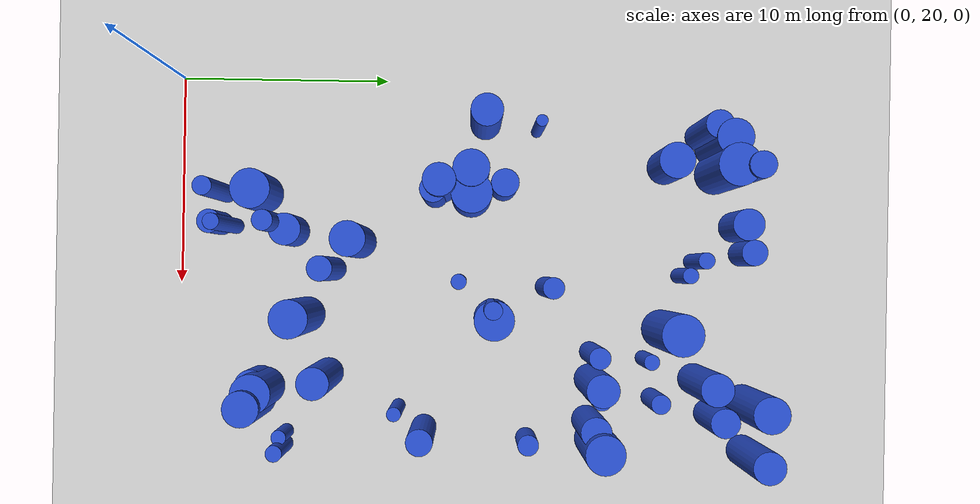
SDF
<sdf version="1.6">
 <world name="default">
  <model name="ground_plane">
   <static>1</static>
   <link name="link">
    <collision name="collision">
     <geometry><plane><normal>0 0 1</normal><size>100 100</size></plane></geometry>
     <surface><friction><ode><mu>100</mu><mu2>50</mu2></ode></friction></surface>
    </collision>
    <visual name="visual">
     <cast_shadows>0</cast_shadows>
     <geometry><plane><normal>0 0 1</normal><size>100 100</size></plane></geometry>
     <material>
      <script><uri>file://media/materials/scripts/gazebo.material</uri><name>Gazebo/Grey</name></script>
     </material>
    </visual>
   </link>
  </model>
  <model name="0">
   <static>0</static>
   <link name="link">
    <inertial>
     <mass>2</mass>
     <inertia><ixx>1.91349</ixx><ixy>0</ixy><ixz>0</ixz><iyy>1.91349</iyy><iyz>0</iyz><izz>0.709288</izz></inertia>
    </inertial>
    <collision name="collision">
     <geometry><cylinder><length>3.05828</length><radius>0.842192</radius></cylinder></geometry>
     <surface><contact><collide_without_contact>1</collide_without_contact></contact></surface>
    </collision>
    <visual name="visual">
     <geometry><cylinder><length>3.05828</length><radius>0.842192</radius></cylinder></geometry>
     <material>
      <script><uri>file://media/materials/scripts/gazebo.material</uri><name>Gazebo/Blue</name></script>
     </material>
    </visual>
    <gravity>0</gravity>
   </link>
   <pose>4.01882 43.668 1.52914 0 -0 0</pose>
  </model>
  <model name="2">
   <static>0</static>
   <link name="link">
    <inertial>
     <mass>2</mass>
     <inertia><ixx>4.06006</ixx><ixy>0</ixy><ixz>0</ixz><iyy>4.06006</iyy><iyz>0</iyz><izz>0.547674</izz></inertia>
    </inertial>
    <collision name="collision">
     <geometry><cylinder><length>4.76627</length><radius>0.74005</radius></cylinder></geometry>
     <surface><contact><collide_without_contact>1</collide_without_contact></contact></surface>
    </collision>
    <visual name="visual">
     <geometry><cylinder><length>4.76627</length><radius>0.74005</radius></cylinder></geometry>
     <material>
      <script><uri>file://media/materials/scripts/gazebo.material</uri><name>Gazebo/Blue</name></script>
     </material>
    </visual>
    <gravity>0</gravity>
   </link>
   <pose>14.3801 27.3031 2.38314 0 -0 0</pose>
  </model>
  <model name="14">
   <static>0</static>
   <link name="link">
    <inertial>
     <mass>2</mass>
     <inertia><ixx>4.30261</ixx><ixy>0</ixy><ixz>0</ixz><iyy>4.30261</iyy><iyz>0</iyz><izz>0.6461</izz></inertia>
    </inertial>
    <collision name="collision">
     <geometry><cylinder><length>4.88644</length><radius>0.803803</radius></cylinder></geometry>
     <surface><contact><collide_without_contact>1</collide_without_contact></contact></surface>
    </collision>
    <visual name="visual">
     <geometry><cylinder><length>4.88644</length><radius>0.803803</radius></cylinder></geometry>
     <material>
      <script><uri>file://media/materials/scripts/gazebo.material</uri><name>Gazebo/Blue</name></script>
     </material>
    </visual>
    <gravity>0</gravity>
   </link>
   <pose>7.93289 28.7579 2.44322 0 -0 0</pose>
  </model>
  <model name="18">
   <static>0</static>
   <link name="link">
    <inertial>
     <mass>2</mass>
     <inertia><ixx>2.75852</ixx><ixy>0</ixy><ixz>0</ixz><iyy>2.75852</iyy><iyz>0</iyz><izz>0.232447</izz></inertia>
    </inertial>
    <collision name="collision">
     <geometry><cylinder><length>3.98168</length><radius>0.482127</radius></cylinder></geometry>
     <surface><contact><collide_without_contact>1</collide_without_contact></contact></surface>
    </collision>
    <visual name="visual">
     <geometry><cylinder><length>3.98168</length><radius>0.482127</radius></cylinder></geometry>
     <material>
      <script><uri>file://media/materials/scripts/gazebo.material</uri><name>Gazebo/Blue</name></script>
     </material>
    </visual>
    <gravity>0</gravity>
   </link>
   <pose>7.12648 24.7804 1.99084 0 -0 0</pose>
  </model>
  <model name="19">
   <static>0</static>
   <link name="link">
    <inertial>
     <mass>2</mass>
     <inertia><ixx>2.15702</ixx><ixy>0</ixy><ixz>0</ixz><iyy>2.15702</iyy><iyz>0</iyz><izz>0.863134</izz></inertia>
    </inertial>
    <collision name="collision">
     <geometry><cylinder><length>3.21756</length><radius>0.92905</radius></cylinder></geometry>
     <surface><contact><collide_without_contact>1</collide_without_contact></contact></surface>
    </collision>
    <visual name="visual">
     <geometry><cylinder><length>3.21756</length><radius>0.92905</radius></cylinder></geometry>
     <material>
      <script><uri>file://media/materials/scripts/gazebo.material</uri><name>Gazebo/Blue</name></script>
     </material>
    </visual>
    <gravity>0</gravity>
   </link>
   <pose>5.64396 24.0193 1.60878 0 -0 0</pose>
  </model>
  <model name="27">
   <static>0</static>
   <link name="link">
    <inertial>
     <mass>2</mass>
     <inertia>
      <ixx>0.751136</ixx>
      <ixy>0</ixy>
      <ixz>0</ixz>
      <iyy>0.751136</iyy>
      <iyz>0</iyz>
      <izz>0.125842</izz>
     </inertia>
    </inertial>
    <collision name="collision">
     <geometry><cylinder><length>2.03207</length><radius>0.354742</radius></cylinder></geometry>
     <surface><contact><collide_without_contact>1</collide_without_contact></contact></surface>
    </collision>
    <visual name="visual">
     <geometry><cylinder><length>2.03207</length><radius>0.354742</radius></cylinder></geometry>
     <material>
      <script><uri>file://media/materials/scripts/gazebo.material</uri><name>Gazebo/Blue</name></script>
     </material>
    </visual>
    <gravity>0</gravity>
   </link>
   <pose>17.2823 25.2801 1.01603 0 -0 0</pose>
  </model>
  <model name="28">
   <static>0</static>
   <link name="link">
    <inertial>
     <mass>2</mass>
     <inertia><ixx>3.31167</ixx><ixy>0</ixy><ixz>0</ixz><iyy>3.31167</iyy><iyz>0</iyz><izz>0.713837</izz></inertia>
    </inertial>
    <collision name="collision">
     <geometry><cylinder><length>4.21052</length><radius>0.844889</radius></cylinder></geometry>
     <surface><contact><collide_without_contact>1</collide_without_contact></contact></surface>
    </collision>
    <visual name="visual">
     <geometry><cylinder><length>4.21052</length><radius>0.844889</radius></cylinder></geometry>
     <material>
      <script><uri>file://media/materials/scripts/gazebo.material</uri><name>Gazebo/Blue</name></script>
     </material>
    </visual>
    <gravity>0</gravity>
   </link>
   <pose>3.07266 46.0083 2.10526 0 -0 0</pose>
  </model>
  <model name="49">
   <static>0</static>
   <link name="link">
    <inertial>
     <mass>2</mass>
     <inertia><ixx>1.58752</ixx><ixy>0</ixy><ixz>0</ixz><iyy>1.58752</iyy><iyz>0</iyz><izz>0.112444</izz></inertia>
    </inertial>
    <collision name="collision">
     <geometry><cylinder><length>3.03114</length><radius>0.335327</radius></cylinder></geometry>
     <surface><contact><collide_without_contact>1</collide_without_contact></contact></surface>
    </collision>
    <visual name="visual">
     <geometry><cylinder><length>3.03114</length><radius>0.335327</radius></cylinder></geometry>
     <material>
      <script><uri>file://media/materials/scripts/gazebo.material</uri><name>Gazebo/Blue</name></script>
     </material>
    </visual>
    <gravity>0</gravity>
   </link>
   <pose>15.9407 30.778 1.51557 0 -0 0</pose>
  </model>
  <model name="52">
   <static>0</static>
   <link name="link">
    <inertial>
     <mass>2</mass>
     <inertia><ixx>4.53354</ixx><ixy>0</ixy><ixz>0</ixz><iyy>4.53354</iyy><iyz>0</iyz><izz>0.761526</izz></inertia>
    </inertial>
    <collision name="collision">
     <geometry><cylinder><length>4.99166</length><radius>0.872654</radius></cylinder></geometry>
     <surface><contact><collide_without_contact>1</collide_without_contact></contact></surface>
    </collision>
    <visual name="visual">
     <geometry><cylinder><length>4.99166</length><radius>0.872654</radius></cylinder></geometry>
     <material>
      <script><uri>file://media/materials/scripts/gazebo.material</uri><name>Gazebo/Blue</name></script>
     </material>
    </visual>
    <gravity>0</gravity>
   </link>
   <pose>11.5308 26.2227 2.49583 0 -0 0</pose>
  </model>
  <model name="63">
   <static>0</static>
   <link name="link">
    <inertial>
     <mass>2</mass>
     <inertia><ixx>3.37464</ixx><ixy>0</ixy><ixz>0</ixz><iyy>3.37464</iyy><iyz>0</iyz><izz>0.189522</izz></inertia>
    </inertial>
    <collision name="collision">
     <geometry><cylinder><length>4.43613</length><radius>0.435342</radius></cylinder></geometry>
     <surface><contact><collide_without_contact>1</collide_without_contact></contact></surface>
    </collision>
    <visual name="visual">
     <geometry><cylinder><length>4.43613</length><radius>0.435342</radius></cylinder></geometry>
     <material>
      <script><uri>file://media/materials/scripts/gazebo.material</uri><name>Gazebo/Blue</name></script>
     </material>
    </visual>
    <gravity>0</gravity>
   </link>
   <pose>5.65746 22.1794 2.21807 0 -0 0</pose>
  </model>
  <model name="68">
   <static>0</static>
   <link name="link">
    <inertial>
     <mass>2</mass>
     <inertia><ixx>1.10679</ixx><ixy>0</ixy><ixz>0</ixz><iyy>1.10679</iyy><iyz>0</iyz><izz>0.375621</izz></inertia>
    </inertial>
    <collision name="collision">
     <geometry><cylinder><length>2.34816</length><radius>0.61288</radius></cylinder></geometry>
     <surface><contact><collide_without_contact>1</collide_without_contact></contact></surface>
    </collision>
    <visual name="visual">
     <geometry><cylinder><length>2.34816</length><radius>0.61288</radius></cylinder></geometry>
     <material>
      <script><uri>file://media/materials/scripts/gazebo.material</uri><name>Gazebo/Blue</name></script>
     </material>
    </visual>
    <gravity>0</gravity>
   </link>
   <pose>8.21004 47.5125 1.17408 0 -0 0</pose>
  </model>
  <model name="70">
   <static>0</static>
   <link name="link">
    <inertial>
     <mass>2</mass>
     <inertia><ixx>2.38876</ixx><ixy>0</ixy><ixz>0</ixz><iyy>2.38876</iyy><iyz>0</iyz><izz>0.883901</izz></inertia>
    </inertial>
    <collision name="collision">
     <geometry><cylinder><length>3.41773</length><radius>0.94016</radius></cylinder></geometry>
     <surface><contact><collide_without_contact>1</collide_without_contact></contact></surface>
    </collision>
    <visual name="visual">
     <geometry><cylinder><length>3.41773</length><radius>0.94016</radius></cylinder></geometry>
     <material>
      <script><uri>file://media/materials/scripts/gazebo.material</uri><name>Gazebo/Blue</name></script>
     </material>
    </visual>
    <gravity>0</gravity>
   </link>
   <pose>15.0925 24.2243 1.70886 0 -0 0</pose>
  </model>
  <model name="74">
   <static>0</static>
   <link name="link">
    <inertial>
     <mass>2</mass>
     <inertia><ixx>3.87836</ixx><ixy>0</ixy><ixz>0</ixz><iyy>3.87836</iyy><iyz>0</iyz><izz>0.568034</izz></inertia>
    </inertial>
    <collision name="collision">
     <geometry><cylinder><length>4.64393</length><radius>0.75368</radius></cylinder></geometry>
     <surface><contact><collide_without_contact>1</collide_without_contact></contact></surface>
    </collision>
    <visual name="visual">
     <geometry><cylinder><length>4.64393</length><radius>0.75368</radius></cylinder></geometry>
     <material>
      <script><uri>file://media/materials/scripts/gazebo.material</uri><name>Gazebo/Blue</name></script>
     </material>
    </visual>
    <gravity>0</gravity>
   </link>
   <pose>14.3901 45.2579 2.32196 0 -0 0</pose>
  </model>
  <model name="82">
   <static>0</static>
   <link name="link">
    <inertial>
     <mass>2</mass>
     <inertia><ixx>4.29467</ixx><ixy>0</ixy><ixz>0</ixz><iyy>4.29467</iyy><iyz>0</iyz><izz>0.559638</izz></inertia>
    </inertial>
    <collision name="collision">
     <geometry><cylinder><length>4.90807</length><radius>0.74809</radius></cylinder></geometry>
     <surface><contact><collide_without_contact>1</collide_without_contact></contact></surface>
    </collision>
    <visual name="visual">
     <geometry><cylinder><length>4.90807</length><radius>0.74809</radius></cylinder></geometry>
     <material>
      <script><uri>file://media/materials/scripts/gazebo.material</uri><name>Gazebo/Blue</name></script>
     </material>
    </visual>
    <gravity>0</gravity>
   </link>
   <pose>14.4841 40.1495 2.45403 0 -0 0</pose>
  </model>
  <model name="88">
   <static>0</static>
   <link name="link">
    <inertial>
     <mass>2</mass>
     <inertia><ixx>2.79987</ixx><ixy>0</ixy><ixz>0</ixz><iyy>2.79987</iyy><iyz>0</iyz><izz>0.506392</izz></inertia>
    </inertial>
    <collision name="collision">
     <geometry><cylinder><length>3.90897</length><radius>0.711612</radius></cylinder></geometry>
     <surface><contact><collide_without_contact>1</collide_without_contact></contact></surface>
    </collision>
    <visual name="visual">
     <geometry><cylinder><length>3.90897</length><radius>0.711612</radius></cylinder></geometry>
     <material>
      <script><uri>file://media/materials/scripts/gazebo.material</uri><name>Gazebo/Blue</name></script>
     </material>
    </visual>
    <gravity>0</gravity>
   </link>
   <pose>16.49 40.0187 1.95448 0 -0 0</pose>
  </model>
  <model name="93">
   <static>0</static>
   <link name="link">
    <inertial>
     <mass>2</mass>
     <inertia><ixx>3.98973</ixx><ixy>0</ixy><ixz>0</ixz><iyy>3.98973</iyy><iyz>0</iyz><izz>0.325904</izz></inertia>
    </inertial>
    <collision name="collision">
     <geometry><cylinder><length>4.79173</length><radius>0.57088</radius></cylinder></geometry>
     <surface><contact><collide_without_contact>1</collide_without_contact></contact></surface>
    </collision>
    <visual name="visual">
     <geometry><cylinder><length>4.79173</length><radius>0.57088</radius></cylinder></geometry>
     <material>
      <script><uri>file://media/materials/scripts/gazebo.material</uri><name>Gazebo/Blue</name></script>
     </material>
    </visual>
    <gravity>0</gravity>
   </link>
   <pose>9.27206 27.527 2.39586 0 -0 0</pose>
  </model>
  <model name="95">
   <static>0</static>
   <link name="link">
    <inertial>
     <mass>2</mass>
     <inertia><ixx>2.55412</ixx><ixy>0</ixy><ixz>0</ixz><iyy>2.55412</iyy><iyz>0</iyz><izz>0.249734</izz></inertia>
    </inertial>
    <collision name="collision">
     <geometry><cylinder><length>3.81779</length><radius>0.499734</radius></cylinder></geometry>
     <surface><contact><collide_without_contact>1</collide_without_contact></contact></surface>
    </collision>
    <visual name="visual">
     <geometry><cylinder><length>3.81779</length><radius>0.499734</radius></cylinder></geometry>
     <material>
      <script><uri>file://media/materials/scripts/gazebo.material</uri><name>Gazebo/Blue</name></script>
     </material>
    </visual>
    <gravity>0</gravity>
   </link>
   <pose>13.1436 40.1391 1.9089 0 -0 0</pose>
  </model>
  <model name="100">
   <static>0</static>
   <link name="link">
    <inertial>
     <mass>2</mass>
     <inertia><ixx>1.38166</ixx><ixy>0</ixy><ixz>0</ixz><iyy>1.38166</iyy><iyz>0</iyz><izz>0.57139</izz></inertia>
    </inertial>
    <collision name="collision">
     <geometry><cylinder><length>2.56433</length><radius>0.755903</radius></cylinder></geometry>
     <surface><contact><collide_without_contact>1</collide_without_contact></contact></surface>
    </collision>
    <visual name="visual">
     <geometry><cylinder><length>2.56433</length><radius>0.755903</radius></cylinder></geometry>
     <material>
      <script><uri>file://media/materials/scripts/gazebo.material</uri><name>Gazebo/Blue</name></script>
     </material>
    </visual>
    <gravity>0</gravity>
   </link>
   <pose>7.4595 25.5098 1.28216 0 -0 0</pose>
  </model>
  <model name="108">
   <static>0</static>
   <link name="link">
    <inertial>
     <mass>2</mass>
     <inertia><ixx>1.05789</ixx><ixy>0</ixy><ixz>0</ixz><iyy>1.05789</iyy><iyz>0</iyz><izz>0.136166</izz></inertia>
    </inertial>
    <collision name="collision">
     <geometry><cylinder><length>2.43698</length><radius>0.369006</radius></cylinder></geometry>
     <surface><contact><collide_without_contact>1</collide_without_contact></contact></surface>
    </collision>
    <visual name="visual">
     <geometry><cylinder><length>2.43698</length><radius>0.369006</radius></cylinder></geometry>
     <material>
      <script><uri>file://media/materials/scripts/gazebo.material</uri><name>Gazebo/Blue</name></script>
     </material>
    </visual>
    <gravity>0</gravity>
   </link>
   <pose>13.4097 42.7598 1.21849 0 -0 0</pose>
  </model>
  <model name="109">
   <static>0</static>
   <link name="link">
    <inertial>
     <mass>2</mass>
     <inertia><ixx>1.26102</ixx><ixy>0</ixy><ixz>0</ixz><iyy>1.26102</iyy><iyz>0</iyz><izz>0.13849</izz></inertia>
    </inertial>
    <collision name="collision">
     <geometry><cylinder><length>2.67407</length><radius>0.372142</radius></cylinder></geometry>
     <surface><contact><collide_without_contact>1</collide_without_contact></contact></surface>
    </collision>
    <visual name="visual">
     <geometry><cylinder><length>2.67407</length><radius>0.372142</radius></cylinder></geometry>
     <material>
      <script><uri>file://media/materials/scripts/gazebo.material</uri><name>Gazebo/Blue</name></script>
     </material>
    </visual>
    <gravity>0</gravity>
   </link>
   <pose>9.33583 44.4545 1.33704 0 -0 0</pose>
  </model>
  <model name="110">
   <static>0</static>
   <link name="link">
    <inertial>
     <mass>2</mass>
     <inertia><ixx>2.35146</ixx><ixy>0</ixy><ixz>0</ixz><iyy>2.35146</iyy><iyz>0</iyz><izz>0.929978</izz></inertia>
    </inertial>
    <collision name="collision">
     <geometry><cylinder><length>3.36435</length><radius>0.964354</radius></cylinder></geometry>
     <surface><contact><collide_without_contact>1</collide_without_contact></contact></surface>
    </collision>
    <visual name="visual">
     <geometry><cylinder><length>3.36435</length><radius>0.964354</radius></cylinder></geometry>
     <material>
      <script><uri>file://media/materials/scripts/gazebo.material</uri><name>Gazebo/Blue</name></script>
     </material>
    </visual>
    <gravity>0</gravity>
   </link>
   <pose>5.66572 34.2087 1.68218 0 -0 0</pose>
  </model>
  <model name="111">
   <static>0</static>
   <link name="link">
    <inertial>
     <mass>2</mass>
     <inertia><ixx>3.46333</ixx><ixy>0</ixy><ixz>0</ixz><iyy>3.46333</iyy><iyz>0</iyz><izz>0.374993</izz></inertia>
    </inertial>
    <collision name="collision">
     <geometry><cylinder><length>4.43339</length><radius>0.612366</radius></cylinder></geometry>
     <surface><contact><collide_without_contact>1</collide_without_contact></contact></surface>
    </collision>
    <visual name="visual">
     <geometry><cylinder><length>4.43339</length><radius>0.612366</radius></cylinder></geometry>
     <material>
      <script><uri>file://media/materials/scripts/gazebo.material</uri><name>Gazebo/Blue</name></script>
     </material>
    </visual>
    <gravity>0</gravity>
   </link>
   <pose>16.9683 32.0406 2.2167 0 -0 0</pose>
  </model>
  <model name="113">
   <static>0</static>
   <link name="link">
    <inertial>
     <mass>2</mass>
     <inertia><ixx>1.38505</ixx><ixy>0</ixy><ixz>0</ixz><iyy>1.38505</iyy><iyz>0</iyz><izz>0.151574</izz></inertia>
    </inertial>
    <collision name="collision">
     <geometry><cylinder><length>2.80278</length><radius>0.389325</radius></cylinder></geometry>
     <surface><contact><collide_without_contact>1</collide_without_contact></contact></surface>
    </collision>
    <visual name="visual">
     <geometry><cylinder><length>2.80278</length><radius>0.389325</radius></cylinder></geometry>
     <material>
      <script><uri>file://media/materials/scripts/gazebo.material</uri><name>Gazebo/Blue</name></script>
     </material>
    </visual>
    <gravity>0</gravity>
   </link>
   <pose>17.8881 25.224 1.40139 0 -0 0</pose>
  </model>
  <model name="116">
   <static>0</static>
   <link name="link">
    <inertial>
     <mass>2</mass>
     <inertia><ixx>4.11078</ixx><ixy>0</ixy><ixz>0</ixz><iyy>4.11078</iyy><iyz>0</iyz><izz>0.172543</izz></inertia>
    </inertial>
    <collision name="collision">
     <geometry><cylinder><length>4.91397</length><radius>0.415383</radius></cylinder></geometry>
     <surface><contact><collide_without_contact>1</collide_without_contact></contact></surface>
    </collision>
    <visual name="visual">
     <geometry><cylinder><length>4.91397</length><radius>0.415383</radius></cylinder></geometry>
     <material>
      <script><uri>file://media/materials/scripts/gazebo.material</uri><name>Gazebo/Blue</name></script>
     </material>
    </visual>
    <gravity>0</gravity>
   </link>
   <pose>11.0166 35.2485 2.45698 0 -0 0</pose>
  </model>
  <model name="134">
   <static>0</static>
   <link name="link">
    <inertial>
     <mass>2</mass>
     <inertia><ixx>1.64957</ixx><ixy>0</ixy><ixz>0</ixz><iyy>1.64957</iyy><iyz>0</iyz><izz>0.147574</izz></inertia>
    </inertial>
    <collision name="collision">
     <geometry><cylinder><length>3.07485</length><radius>0.384153</radius></cylinder></geometry>
     <surface><contact><collide_without_contact>1</collide_without_contact></contact></surface>
    </collision>
    <visual name="visual">
     <geometry><cylinder><length>3.07485</length><radius>0.384153</radius></cylinder></geometry>
     <material>
      <script><uri>file://media/materials/scripts/gazebo.material</uri><name>Gazebo/Blue</name></script>
     </material>
    </visual>
    <gravity>0</gravity>
   </link>
   <pose>8.63414 45.0783 1.53742 0 -0 0</pose>
  </model>
  <model name="142">
   <static>0</static>
   <link name="link">
    <inertial>
     <mass>2</mass>
     <inertia><ixx>3.93182</ixx><ixy>0</ixy><ixz>0</ixz><iyy>3.93182</iyy><iyz>0</iyz><izz>0.700966</izz></inertia>
    </inertial>
    <collision name="collision">
     <geometry><cylinder><length>4.63551</length><radius>0.837237</radius></cylinder></geometry>
     <surface><contact><collide_without_contact>1</collide_without_contact></contact></surface>
    </collision>
    <visual name="visual">
     <geometry><cylinder><length>4.63551</length><radius>0.837237</radius></cylinder></geometry>
     <material>
      <script><uri>file://media/materials/scripts/gazebo.material</uri><name>Gazebo/Blue</name></script>
     </material>
    </visual>
    <gravity>0</gravity>
   </link>
   <pose>15.4713 47.6908 2.31776 0 -0 0</pose>
  </model>
  <model name="145">
   <static>0</static>
   <link name="link">
    <inertial>
     <mass>2</mass>
     <inertia><ixx>2.0837</ixx><ixy>0</ixy><ixz>0</ixz><iyy>2.0837</iyy><iyz>0</iyz><izz>0.21133</izz></inertia>
    </inertial>
    <collision name="collision">
     <geometry><cylinder><length>3.44502</length><radius>0.459706</radius></cylinder></geometry>
     <surface><contact><collide_without_contact>1</collide_without_contact></contact></surface>
    </collision>
    <visual name="visual">
     <geometry><cylinder><length>3.44502</length><radius>0.459706</radius></cylinder></geometry>
     <material>
      <script><uri>file://media/materials/scripts/gazebo.material</uri><name>Gazebo/Blue</name></script>
     </material>
    </visual>
    <gravity>0</gravity>
   </link>
   <pose>15.1046 40.3209 1.72251 0 -0 0</pose>
  </model>
  <model name="153">
   <static>0</static>
   <link name="link">
    <inertial>
     <mass>2</mass>
     <inertia><ixx>3.0701</ixx><ixy>0</ixy><ixz>0</ixz><iyy>3.0701</iyy><iyz>0</iyz><izz>0.587004</izz></inertia>
    </inertial>
    <collision name="collision">
     <geometry><cylinder><length>4.08162</length><radius>0.766162</radius></cylinder></geometry>
     <surface><contact><collide_without_contact>1</collide_without_contact></contact></surface>
    </collision>
    <visual name="visual">
     <geometry><cylinder><length>4.08162</length><radius>0.766162</radius></cylinder></geometry>
     <material>
      <script><uri>file://media/materials/scripts/gazebo.material</uri><name>Gazebo/Blue</name></script>
     </material>
    </visual>
    <gravity>0</gravity>
   </link>
   <pose>5.17678 32.7306 2.04081 0 -0 0</pose>
  </model>
  <model name="155">
   <static>0</static>
   <link name="link">
    <inertial>
     <mass>2</mass>
     <inertia><ixx>4.46388</ixx><ixy>0</ixy><ixz>0</ixz><iyy>4.46388</iyy><iyz>0</iyz><izz>0.908011</izz></inertia>
    </inertial>
    <collision name="collision">
     <geometry><cylinder><length>4.90502</length><radius>0.952896</radius></cylinder></geometry>
     <surface><contact><collide_without_contact>1</collide_without_contact></contact></surface>
    </collision>
    <visual name="visual">
     <geometry><cylinder><length>4.90502</length><radius>0.952896</radius></cylinder></geometry>
     <material>
      <script><uri>file://media/materials/scripts/gazebo.material</uri><name>Gazebo/Blue</name></script>
     </material>
    </visual>
    <gravity>0</gravity>
   </link>
   <pose>11.9712 43.6332 2.45251 0 -0 0</pose>
  </model>
  <model name="157">
   <static>0</static>
   <link name="link">
    <inertial>
     <mass>2</mass>
     <inertia><ixx>1.36858</ixx><ixy>0</ixy><ixz>0</ixz><iyy>1.36858</iyy><iyz>0</iyz><izz>0.433182</izz></inertia>
    </inertial>
    <collision name="collision">
     <geometry><cylinder><length>2.62905</length><radius>0.658166</radius></cylinder></geometry>
     <surface><contact><collide_without_contact>1</collide_without_contact></contact></surface>
    </collision>
    <visual name="visual">
     <geometry><cylinder><length>2.62905</length><radius>0.658166</radius></cylinder></geometry>
     <material>
      <script><uri>file://media/materials/scripts/gazebo.material</uri><name>Gazebo/Blue</name></script>
     </material>
    </visual>
    <gravity>0</gravity>
   </link>
   <pose>5.13829 35.7656 1.31453 0 -0 0</pose>
  </model>
  <model name="161">
   <static>0</static>
   <link name="link">
    <inertial>
     <mass>2</mass>
     <inertia><ixx>2.38004</ixx><ixy>0</ixy><ixz>0</ixz><iyy>2.38004</iyy><iyz>0</iyz><izz>0.388461</izz></inertia>
    </inertial>
    <collision name="collision">
     <geometry><cylinder><length>3.62144</length><radius>0.623266</radius></cylinder></geometry>
     <surface><contact><collide_without_contact>1</collide_without_contact></contact></surface>
    </collision>
    <visual name="visual">
     <geometry><cylinder><length>3.62144</length><radius>0.623266</radius></cylinder></geometry>
     <material>
      <script><uri>file://media/materials/scripts/gazebo.material</uri><name>Gazebo/Blue</name></script>
     </material>
    </visual>
    <gravity>0</gravity>
   </link>
   <pose>5.56471 32.4436 1.81072 0 -0 0</pose>
  </model>
  <model name="164">
   <static>0</static>
   <link name="link">
    <inertial>
     <mass>2</mass>
     <inertia><ixx>1.11747</ixx><ixy>0</ixy><ixz>0</ixz><iyy>1.11747</iyy><iyz>0</iyz><izz>0.607863</izz></inertia>
    </inertial>
    <collision name="collision">
     <geometry><cylinder><length>2.20935</length><radius>0.779656</radius></cylinder></geometry>
     <surface><contact><collide_without_contact>1</collide_without_contact></contact></surface>
    </collision>
    <visual name="visual">
     <geometry><cylinder><length>2.20935</length><radius>0.779656</radius></cylinder></geometry>
     <material>
      <script><uri>file://media/materials/scripts/gazebo.material</uri><name>Gazebo/Blue</name></script>
     </material>
    </visual>
    <gravity>0</gravity>
   </link>
   <pose>14.8555 23.9788 1.10467 0 -0 0</pose>
  </model>
  <model name="167">
   <static>0</static>
   <link name="link">
    <inertial>
     <mass>2</mass>
     <inertia><ixx>1.42631</ixx><ixy>0</ixy><ixz>0</ixz><iyy>1.42631</iyy><iyz>0</iyz><izz>0.558462</izz></inertia>
    </inertial>
    <collision name="collision">
     <geometry><cylinder><length>2.62345</length><radius>0.747303</radius></cylinder></geometry>
     <surface><contact><collide_without_contact>1</collide_without_contact></contact></surface>
    </collision>
    <visual name="visual">
     <geometry><cylinder><length>2.62345</length><radius>0.747303</radius></cylinder></geometry>
     <material>
      <script><uri>file://media/materials/scripts/gazebo.material</uri><name>Gazebo/Blue</name></script>
     </material>
    </visual>
    <gravity>0</gravity>
   </link>
   <pose>6.90825 47.1397 1.31173 0 -0 0</pose>
  </model>
  <model name="168">
   <static>0</static>
   <link name="link">
    <inertial>
     <mass>2</mass>
     <inertia><ixx>2.46395</ixx><ixy>0</ixy><ixz>0</ixz><iyy>2.46395</iyy><iyz>0</iyz><izz>0.736502</izz></inertia>
    </inertial>
    <collision name="collision">
     <geometry><cylinder><length>3.54601</length><radius>0.858197</radius></cylinder></geometry>
     <surface><contact><collide_without_contact>1</collide_without_contact></contact></surface>
    </collision>
    <visual name="visual">
     <geometry><cylinder><length>3.54601</length><radius>0.858197</radius></cylinder></geometry>
     <material>
      <script><uri>file://media/materials/scripts/gazebo.material</uri><name>Gazebo/Blue</name></script>
     </material>
    </visual>
    <gravity>0</gravity>
   </link>
   <pose>4.56759 34.1751 1.773 0 -0 0</pose>
  </model>
  <model name="171">
   <static>0</static>
   <link name="link">
    <inertial>
     <mass>2</mass>
     <inertia>
      <ixx>0.948382</ixx>
      <ixy>0</ixy>
      <ixz>0</ixz>
      <iyy>0.948382</iyy>
      <iyz>0</iyz>
      <izz>0.135504</izz>
     </inertia>
    </inertial>
    <collision name="collision">
     <geometry><cylinder><length>2.29865</length><radius>0.368109</radius></cylinder></geometry>
     <surface><contact><collide_without_contact>1</collide_without_contact></contact></surface>
    </collision>
    <visual name="visual">
     <geometry><cylinder><length>2.29865</length><radius>0.368109</radius></cylinder></geometry>
     <material>
      <script><uri>file://media/materials/scripts/gazebo.material</uri><name>Gazebo/Blue</name></script>
     </material>
    </visual>
    <gravity>0</gravity>
   </link>
   <pose>9.78927 33.6676 1.14932 0 -0 0</pose>
  </model>
  <model name="172">
   <static>0</static>
   <link name="link">
    <inertial>
     <mass>2</mass>
     <inertia><ixx>3.58316</ixx><ixy>0</ixy><ixz>0</ixz><iyy>3.58316</iyy><iyz>0</iyz><izz>0.140377</izz></inertia>
    </inertial>
    <collision name="collision">
     <geometry><cylinder><length>4.59106</length><radius>0.37467</radius></cylinder></geometry>
     <surface><contact><collide_without_contact>1</collide_without_contact></contact></surface>
    </collision>
    <visual name="visual">
     <geometry><cylinder><length>4.59106</length><radius>0.37467</radius></cylinder></geometry>
     <material>
      <script><uri>file://media/materials/scripts/gazebo.material</uri><name>Gazebo/Blue</name></script>
     </material>
    </visual>
    <gravity>0</gravity>
   </link>
   <pose>7.24927 22.6448 2.29553 0 -0 0</pose>
  </model>
  <model name="175">
   <static>0</static>
   <link name="link">
    <inertial>
     <mass>2</mass>
     <inertia><ixx>3.72911</ixx><ixy>0</ixy><ixz>0</ixz><iyy>3.72911</iyy><iyz>0</iyz><izz>0.833685</izz></inertia>
    </inertial>
    <collision name="collision">
     <geometry><cylinder><length>4.45798</length><radius>0.913064</radius></cylinder></geometry>
     <surface><contact><collide_without_contact>1</collide_without_contact></contact></surface>
    </collision>
    <visual name="visual">
     <geometry><cylinder><length>4.45798</length><radius>0.913064</radius></cylinder></geometry>
     <material>
      <script><uri>file://media/materials/scripts/gazebo.material</uri><name>Gazebo/Blue</name></script>
     </material>
    </visual>
    <gravity>0</gravity>
   </link>
   <pose>17.3945 40.3735 2.22899 0 -0 0</pose>
  </model>
  <model name="179">
   <static>0</static>
   <link name="link">
    <inertial>
     <mass>2</mass>
     <inertia><ixx>2.08157</ixx><ixy>0</ixy><ixz>0</ixz><iyy>2.08157</iyy><iyz>0</iyz><izz>0.475053</izz></inertia>
    </inertial>
    <collision name="collision">
     <geometry><cylinder><length>3.3263</length><radius>0.689241</radius></cylinder></geometry>
     <surface><contact><collide_without_contact>1</collide_without_contact></contact></surface>
    </collision>
    <visual name="visual">
     <geometry><cylinder><length>3.3263</length><radius>0.689241</radius></cylinder></geometry>
     <material>
      <script><uri>file://media/materials/scripts/gazebo.material</uri><name>Gazebo/Blue</name></script>
     </material>
    </visual>
    <gravity>0</gravity>
   </link>
   <pose>16.0661 46.0022 1.66315 0 -0 0</pose>
  </model>
  <model name="188">
   <static>0</static>
   <link name="link">
    <inertial>
     <mass>2</mass>
     <inertia><ixx>4.14335</ixx><ixy>0</ixy><ixz>0</ixz><iyy>4.14335</iyy><iyz>0</iyz><izz>0.235126</izz></inertia>
    </inertial>
    <collision name="collision">
     <geometry><cylinder><length>4.91474</length><radius>0.484898</radius></cylinder></geometry>
     <surface><contact><collide_without_contact>1</collide_without_contact></contact></surface>
    </collision>
    <visual name="visual">
     <geometry><cylinder><length>4.91474</length><radius>0.484898</radius></cylinder></geometry>
     <material>
      <script><uri>file://media/materials/scripts/gazebo.material</uri><name>Gazebo/Blue</name></script>
     </material>
    </visual>
    <gravity>0</gravity>
   </link>
   <pose>9.9782 37.8937 2.45737 0 -0 0</pose>
  </model>
  <model name="189">
   <static>0</static>
   <link name="link">
    <inertial>
     <mass>2</mass>
     <inertia><ixx>1.29349</ixx><ixy>0</ixy><ixz>0</ixz><iyy>1.29349</iyy><iyz>0</iyz><izz>0.210349</izz></inertia>
    </inertial>
    <collision name="collision">
     <geometry><cylinder><length>2.67019</length><radius>0.458638</radius></cylinder></geometry>
     <surface><contact><collide_without_contact>1</collide_without_contact></contact></surface>
    </collision>
    <visual name="visual">
     <geometry><cylinder><length>2.67019</length><radius>0.458638</radius></cylinder></geometry>
     <material>
      <script><uri>file://media/materials/scripts/gazebo.material</uri><name>Gazebo/Blue</name></script>
     </material>
    </visual>
    <gravity>0</gravity>
   </link>
   <pose>15.3332 43.1693 1.33509 0 -0 0</pose>
  </model>
  <model name="195">
   <static>0</static>
   <link name="link">
    <inertial>
     <mass>2</mass>
     <inertia><ixx>1.13306</ixx><ixy>0</ixy><ixz>0</ixz><iyy>1.13306</iyy><iyz>0</iyz><izz>0.313996</izz></inertia>
    </inertial>
    <collision name="collision">
     <geometry><cylinder><length>2.41999</length><radius>0.560353</radius></cylinder></geometry>
     <surface><contact><collide_without_contact>1</collide_without_contact></contact></surface>
    </collision>
    <visual name="visual">
     <geometry><cylinder><length>2.41999</length><radius>0.560353</radius></cylinder></geometry>
     <material>
      <script><uri>file://media/materials/scripts/gazebo.material</uri><name>Gazebo/Blue</name></script>
     </material>
    </visual>
    <gravity>0</gravity>
   </link>
   <pose>7.13258 21.9326 1.20999 0 -0 0</pose>
  </model>
  <model name="201">
   <static>0</static>
   <link name="link">
    <inertial>
     <mass>2</mass>
     <inertia><ixx>1.91528</ixx><ixy>0</ixy><ixz>0</ixz><iyy>1.91528</iyy><iyz>0</iyz><izz>0.890445</izz></inertia>
    </inertial>
    <collision name="collision">
     <geometry><cylinder><length>2.9699</length><radius>0.943634</radius></cylinder></geometry>
     <surface><contact><collide_without_contact>1</collide_without_contact></contact></surface>
    </collision>
    <visual name="visual">
     <geometry><cylinder><length>2.9699</length><radius>0.943634</radius></cylinder></geometry>
     <material>
      <script><uri>file://media/materials/scripts/gazebo.material</uri><name>Gazebo/Blue</name></script>
     </material>
    </visual>
    <gravity>0</gravity>
   </link>
   <pose>11.5583 35.3519 1.48495 0 -0 0</pose>
  </model>
  <model name="209">
   <static>0</static>
   <link name="link">
    <inertial>
     <mass>2</mass>
     <inertia>
      <ixx>2.11249</ixx>
      <ixy>0</ixy>
      <ixz>0</ixz>
      <iyy>2.11249</iyy>
      <iyz>0</iyz>
      <izz>0.0757482</izz>
     </inertia>
    </inertial>
    <collision name="collision">
     <geometry><cylinder><length>3.52813</length><radius>0.275224</radius></cylinder></geometry>
     <surface><contact><collide_without_contact>1</collide_without_contact></contact></surface>
    </collision>
    <visual name="visual">
     <geometry><cylinder><length>3.52813</length><radius>0.275224</radius></cylinder></geometry>
     <material>
      <script><uri>file://media/materials/scripts/gazebo.material</uri><name>Gazebo/Blue</name></script>
     </material>
    </visual>
    <gravity>0</gravity>
   </link>
   <pose>2.36819 37.3679 1.76406 0 -0 0</pose>
  </model>
  <model name="215">
   <static>0</static>
   <link name="link">
    <inertial>
     <mass>2</mass>
     <inertia><ixx>3.34473</ixx><ixy>0</ixy><ixz>0</ixz><iyy>3.34473</iyy><iyz>0</iyz><izz>0.555243</izz></inertia>
    </inertial>
    <collision name="collision">
     <geometry><cylinder><length>4.28983</length><radius>0.745147</radius></cylinder></geometry>
     <surface><contact><collide_without_contact>1</collide_without_contact></contact></surface>
    </collision>
    <visual name="visual">
     <geometry><cylinder><length>4.28983</length><radius>0.745147</radius></cylinder></geometry>
     <material>
      <script><uri>file://media/materials/scripts/gazebo.material</uri><name>Gazebo/Blue</name></script>
     </material>
    </visual>
    <gravity>0</gravity>
   </link>
   <pose>2.04847 34.8468 2.14491 0 -0 0</pose>
  </model>
  <model name="217">
   <static>0</static>
   <link name="link">
    <inertial>
     <mass>2</mass>
     <inertia>
      <ixx>0.908112</ixx>
      <ixy>0</ixy>
      <ixz>0</ixz>
      <iyy>0.908112</iyy>
      <iyz>0</iyz>
      <izz>0.248253</izz>
     </inertia>
    </inertial>
    <collision name="collision">
     <geometry><cylinder><length>2.16885</length><radius>0.49825</radius></cylinder></geometry>
     <surface><contact><collide_without_contact>1</collide_without_contact></contact></surface>
    </collision>
    <visual name="visual">
     <geometry><cylinder><length>2.16885</length><radius>0.49825</radius></cylinder></geometry>
     <material>
      <script><uri>file://media/materials/scripts/gazebo.material</uri><name>Gazebo/Blue</name></script>
     </material>
    </visual>
    <gravity>0</gravity>
   </link>
   <pose>17.4313 37.0569 1.08443 0 -0 0</pose>
  </model>
  <model name="228">
   <static>0</static>
   <link name="link">
    <inertial>
     <mass>2</mass>
     <inertia><ixx>3.06322</ixx><ixy>0</ixy><ixz>0</ixz><iyy>3.06322</iyy><iyz>0</iyz><izz>0.414416</izz></inertia>
    </inertial>
    <collision name="collision">
     <geometry><cylinder><length>4.13957</length><radius>0.643751</radius></cylinder></geometry>
     <surface><contact><collide_without_contact>1</collide_without_contact></contact></surface>
    </collision>
    <visual name="visual">
     <geometry><cylinder><length>4.13957</length><radius>0.643751</radius></cylinder></geometry>
     <material>
      <script><uri>file://media/materials/scripts/gazebo.material</uri><name>Gazebo/Blue</name></script>
     </material>
    </visual>
    <gravity>0</gravity>
   </link>
   <pose>2.4945 45.3105 2.06979 0 -0 0</pose>
  </model>
  <model name="229">
   <static>0</static>
   <link name="link">
    <inertial>
     <mass>2</mass>
     <inertia><ixx>3.49535</ixx><ixy>0</ixy><ixz>0</ixz><iyy>3.49535</iyy><iyz>0</iyz><izz>0.568767</izz></inertia>
    </inertial>
    <collision name="collision">
     <geometry><cylinder><length>4.38929</length><radius>0.754166</radius></cylinder></geometry>
     <surface><contact><collide_without_contact>1</collide_without_contact></contact></surface>
    </collision>
    <visual name="visual">
     <geometry><cylinder><length>4.38929</length><radius>0.754166</radius></cylinder></geometry>
     <material>
      <script><uri>file://media/materials/scripts/gazebo.material</uri><name>Gazebo/Blue</name></script>
     </material>
    </visual>
    <gravity>0</gravity>
   </link>
   <pose>17.8693 47.7119 2.19464 0 -0 0</pose>
  </model>
  <model name="232">
   <static>0</static>
   <link name="link">
    <inertial>
     <mass>2</mass>
     <inertia><ixx>3.90025</ixx><ixy>0</ixy><ixz>0</ixz><iyy>3.90025</iyy><iyz>0</iyz><izz>0.947604</izz></inertia>
    </inertial>
    <collision name="collision">
     <geometry><cylinder><length>4.53417</length><radius>0.97345</radius></cylinder></geometry>
     <surface><contact><collide_without_contact>1</collide_without_contact></contact></surface>
    </collision>
    <visual name="visual">
     <geometry><cylinder><length>4.53417</length><radius>0.97345</radius></cylinder></geometry>
     <material>
      <script><uri>file://media/materials/scripts/gazebo.material</uri><name>Gazebo/Blue</name></script>
     </material>
    </visual>
    <gravity>0</gravity>
   </link>
   <pose>4.33411 46.1373 2.26709 0 -0 0</pose>
  </model>
  <model name="235">
   <static>0</static>
   <link name="link">
    <inertial>
     <mass>2</mass>
     <inertia><ixx>2.70625</ixx><ixy>0</ixy><ixz>0</ixz><iyy>2.70625</iyy><iyz>0</iyz><izz>0.71273</izz></inertia>
    </inertial>
    <collision name="collision">
     <geometry><cylinder><length>3.7549</length><radius>0.844233</radius></cylinder></geometry>
     <surface><contact><collide_without_contact>1</collide_without_contact></contact></surface>
    </collision>
    <visual name="visual">
     <geometry><cylinder><length>3.7549</length><radius>0.844233</radius></cylinder></geometry>
     <material>
      <script><uri>file://media/materials/scripts/gazebo.material</uri><name>Gazebo/Blue</name></script>
     </material>
    </visual>
    <gravity>0</gravity>
   </link>
   <pose>15.7153 23.8791 1.87745 0 -0 0</pose>
  </model>
  <model name="240">
   <static>0</static>
   <link name="link">
    <inertial>
     <mass>2</mass>
     <inertia><ixx>3.86499</ixx><ixy>0</ixy><ixz>0</ixz><iyy>3.86499</iyy><iyz>0</iyz><izz>0.382414</izz></inertia>
    </inertial>
    <collision name="collision">
     <geometry><cylinder><length>4.69497</length><radius>0.618397</radius></cylinder></geometry>
     <surface><contact><collide_without_contact>1</collide_without_contact></contact></surface>
    </collision>
    <visual name="visual">
     <geometry><cylinder><length>4.69497</length><radius>0.618397</radius></cylinder></geometry>
     <material>
      <script><uri>file://media/materials/scripts/gazebo.material</uri><name>Gazebo/Blue</name></script>
     </material>
    </visual>
    <gravity>0</gravity>
   </link>
   <pose>4.35108 47.1129 2.34748 0 -0 0</pose>
  </model>
 </world>
</sdf>
